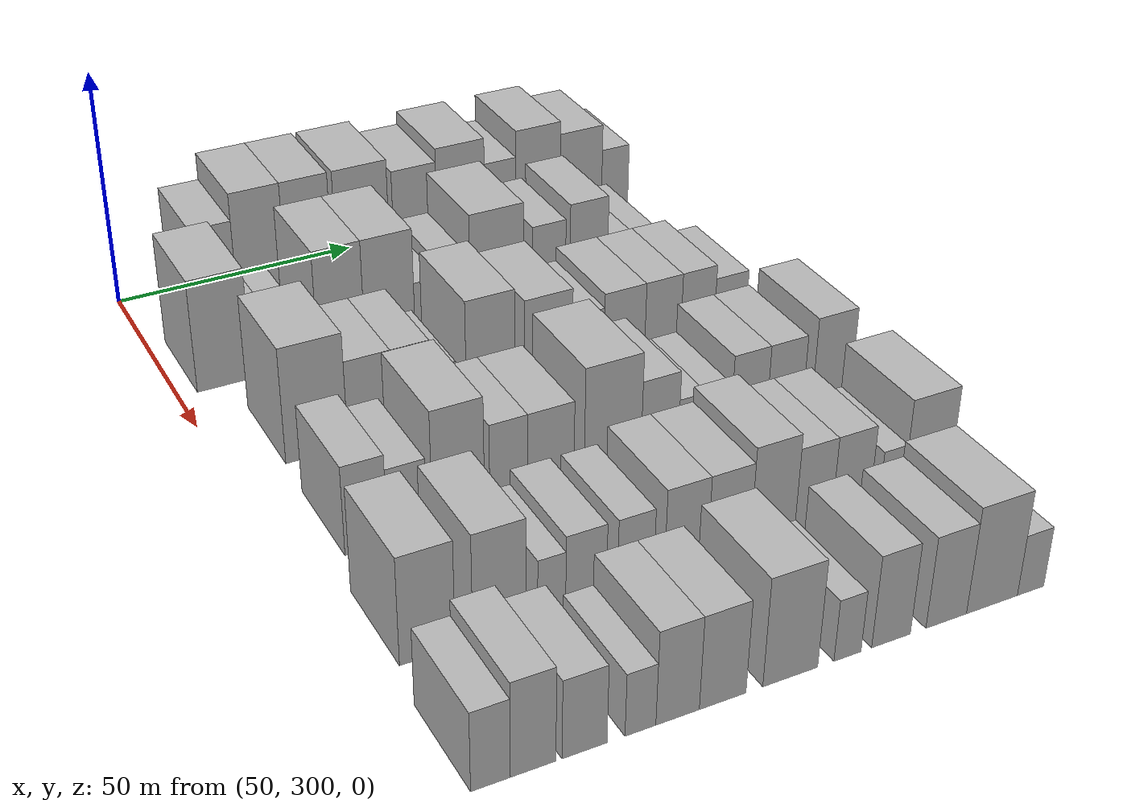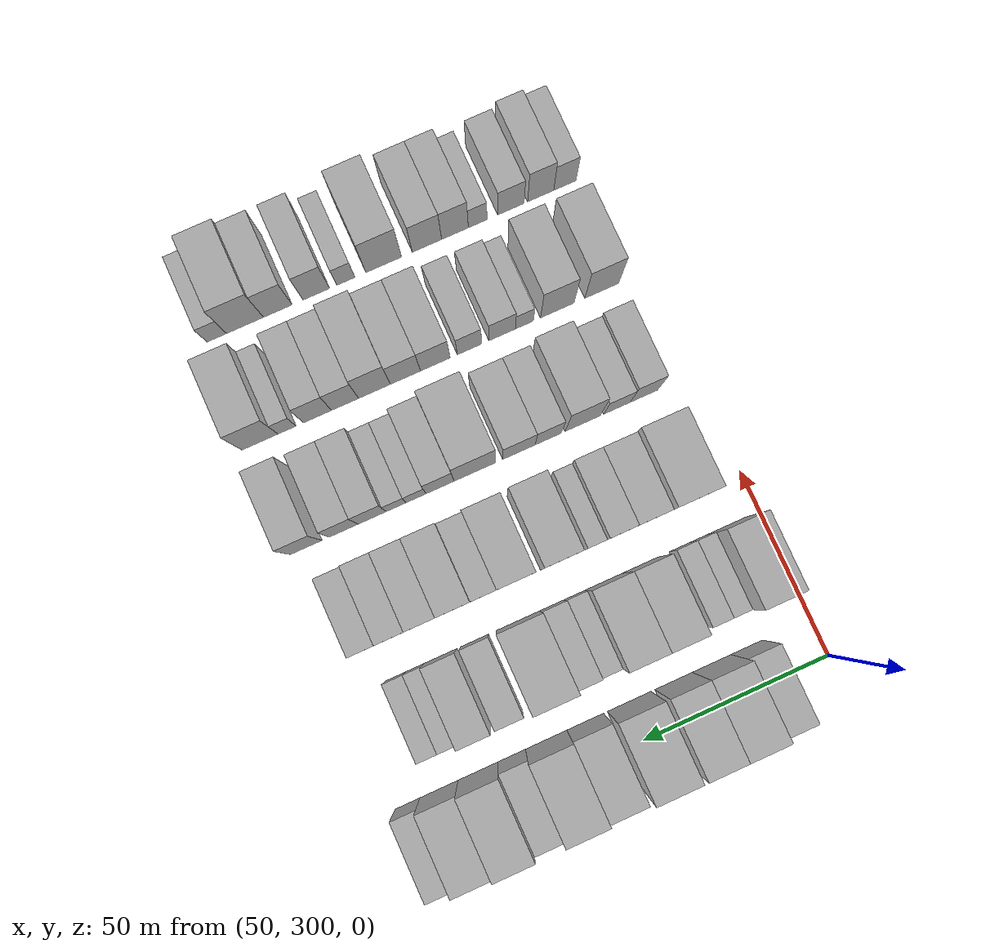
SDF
<sdf version="1.6">
 <world name="default">
  <model name="building_91">
   <static>1</static>
   <pose>50.0000 317.3998 0 0.000000 0.000000 0.000000</pose>
   <link name="link">
    <pose>0 0 9.00 0 0 0</pose>
    <collision name="collision"><geometry><box><size>20.0000 8.5527 18.0000</size></box></geometry></collision>
    <visual name="visual">
     <cast_shadows>0</cast_shadows>
     <geometry><box><size>20.0000 8.5527 18.0000</size></box></geometry>
     <material>
      <script>
       <uri>model://HANNAS_wall/materials/scripts</uri>
       <uri>model://HANNAS_wall/materials/textures</uri>
       <name>vrc/HANNAS_wall</name>
      </script>
     </material>
    </visual>
   </link>
  </model>
  <model name="building_92">
   <static>1</static>
   <pose>50.0000 326.9361 0 0.000000 0.000000 0.000000</pose>
   <link name="link">
    <pose>0 0 12.00 0 0 0</pose>
    <collision name="collision"><geometry><box><size>20.0000 10.5198 24.0000</size></box></geometry></collision>
    <visual name="visual">
     <cast_shadows>0</cast_shadows>
     <geometry><box><size>20.0000 10.5198 24.0000</size></box></geometry>
     <material>
      <script>
       <uri>model://HANNAS_wall/materials/scripts</uri>
       <uri>model://HANNAS_wall/materials/textures</uri>
       <name>vrc/HANNAS_wall</name>
      </script>
     </material>
    </visual>
   </link>
  </model>
  <model name="building_93">
   <static>1</static>
   <pose>50.0000 337.2827 0 0.000000 0.000000 0.000000</pose>
   <link name="link">
    <pose>0 0 12.00 0 0 0</pose>
    <collision name="collision"><geometry><box><size>20.0000 10.1734 24.0000</size></box></geometry></collision>
    <visual name="visual">
     <cast_shadows>0</cast_shadows>
     <geometry><box><size>20.0000 10.1734 24.0000</size></box></geometry>
     <material>
      <script>
       <uri>model://HANNAS_wall/materials/scripts</uri>
       <uri>model://HANNAS_wall/materials/textures</uri>
       <name>vrc/HANNAS_wall</name>
      </script>
     </material>
    </visual>
   </link>
  </model>
  <model name="building_94">
   <static>1</static>
   <pose>50.0000 349.2699 0 0.000000 0.000000 0.000000</pose>
   <link name="link">
    <pose>0 0 12.00 0 0 0</pose>
    <collision name="collision"><geometry><box><size>20.0000 11.8011 24.0000</size></box></geometry></collision>
    <visual name="visual">
     <cast_shadows>0</cast_shadows>
     <geometry><box><size>20.0000 11.8011 24.0000</size></box></geometry>
     <material>
      <script>
       <uri>model://HANNAS_wall/materials/scripts</uri>
       <uri>model://HANNAS_wall/materials/textures</uri>
       <name>vrc/HANNAS_wall</name>
      </script>
     </material>
    </visual>
   </link>
  </model>
  <model name="building_95">
   <static>1</static>
   <pose>50.0000 361.1026 0 0.000000 0.000000 0.000000</pose>
   <link name="link">
    <pose>0 0 10.50 0 0 0</pose>
    <collision name="collision"><geometry><box><size>20.0000 9.8641 21.0000</size></box></geometry></collision>
    <visual name="visual">
     <cast_shadows>0</cast_shadows>
     <geometry><box><size>20.0000 9.8641 21.0000</size></box></geometry>
     <material>
      <script>
       <uri>model://HANNAS_wall/materials/scripts</uri>
       <uri>model://HANNAS_wall/materials/textures</uri>
       <name>vrc/HANNAS_wall</name>
      </script>
     </material>
    </visual>
   </link>
  </model>
  <model name="building_96">
   <static>1</static>
   <pose>50.0000 371.5688 0 0.000000 0.000000 0.000000</pose>
   <link name="link">
    <pose>0 0 12.00 0 0 0</pose>
    <collision name="collision"><geometry><box><size>20.0000 11.0684 24.0000</size></box></geometry></collision>
    <visual name="visual">
     <cast_shadows>0</cast_shadows>
     <geometry><box><size>20.0000 11.0684 24.0000</size></box></geometry>
     <material>
      <script>
       <uri>model://HANNAS_wall/materials/scripts</uri>
       <uri>model://HANNAS_wall/materials/textures</uri>
       <name>vrc/HANNAS_wall</name>
      </script>
     </material>
    </visual>
   </link>
  </model>
  <model name="building_97">
   <static>1</static>
   <pose>50.0000 380.7901 0 0.000000 0.000000 0.000000</pose>
   <link name="link">
    <pose>0 0 9.00 0 0 0</pose>
    <collision name="collision"><geometry><box><size>20.0000 7.3742 18.0000</size></box></geometry></collision>
    <visual name="visual">
     <cast_shadows>0</cast_shadows>
     <geometry><box><size>20.0000 7.3742 18.0000</size></box></geometry>
     <material>
      <script>
       <uri>model://HANNAS_wall/materials/scripts</uri>
       <uri>model://HANNAS_wall/materials/textures</uri>
       <name>vrc/HANNAS_wall</name>
      </script>
     </material>
    </visual>
   </link>
  </model>
  <model name="building_98">
   <static>1</static>
   <pose>50.0000 389.7517 0 0.000000 0.000000 0.000000</pose>
   <link name="link">
    <pose>0 0 12.00 0 0 0</pose>
    <collision name="collision"><geometry><box><size>20.0000 10.5489 24.0000</size></box></geometry></collision>
    <visual name="visual">
     <cast_shadows>0</cast_shadows>
     <geometry><box><size>20.0000 10.5489 24.0000</size></box></geometry>
     <material>
      <script>
       <uri>model://HANNAS_wall/materials/scripts</uri>
       <uri>model://HANNAS_wall/materials/textures</uri>
       <name>vrc/HANNAS_wall</name>
      </script>
     </material>
    </visual>
   </link>
  </model>
  <model name="building_99">
   <static>1</static>
   <pose>50.0000 400.0946 0 0.000000 0.000000 0.000000</pose>
   <link name="link">
    <pose>0 0 10.50 0 0 0</pose>
    <collision name="collision"><geometry><box><size>20.0000 10.1369 21.0000</size></box></geometry></collision>
    <visual name="visual">
     <cast_shadows>0</cast_shadows>
     <geometry><box><size>20.0000 10.1369 21.0000</size></box></geometry>
     <material>
      <script>
       <uri>model://HANNAS_wall/materials/scripts</uri>
       <uri>model://HANNAS_wall/materials/textures</uri>
       <name>vrc/HANNAS_wall</name>
      </script>
     </material>
    </visual>
   </link>
  </model>
  <model name="building_100">
   <static>1</static>
   <pose>50.0000 408.4474 0 0.000000 0.000000 0.000000</pose>
   <link name="link">
    <pose>0 0 7.50 0 0 0</pose>
    <collision name="collision"><geometry><box><size>20.0000 6.5687 15.0000</size></box></geometry></collision>
    <visual name="visual">
     <cast_shadows>0</cast_shadows>
     <geometry><box><size>20.0000 6.5687 15.0000</size></box></geometry>
     <material>
      <script>
       <uri>model://HANNAS_wall/materials/scripts</uri>
       <uri>model://HANNAS_wall/materials/textures</uri>
       <name>vrc/HANNAS_wall</name>
      </script>
     </material>
    </visual>
   </link>
  </model>
  <model name="building_209">
   <static>1</static>
   <pose>79.0000 309.1267 0 0.000000 0.000000 0.000000</pose>
   <link name="link">
    <pose>0 0 12.00 0 0 0</pose>
    <collision name="collision"><geometry><box><size>20.0000 10.8365 24.0000</size></box></geometry></collision>
    <visual name="visual">
     <cast_shadows>0</cast_shadows>
     <geometry><box><size>20.0000 10.8365 24.0000</size></box></geometry>
     <material>
      <script>
       <uri>model://HANNAS_wall/materials/scripts</uri>
       <uri>model://HANNAS_wall/materials/textures</uri>
       <name>vrc/HANNAS_wall</name>
      </script>
     </material>
    </visual>
   </link>
  </model>
  <model name="building_210">
   <static>1</static>
   <pose>79.0000 316.9515 0 0.000000 0.000000 0.000000</pose>
   <link name="link">
    <pose>0 0 6.00 0 0 0</pose>
    <collision name="collision"><geometry><box><size>20.0000 4.8131 12.0000</size></box></geometry></collision>
    <visual name="visual">
     <cast_shadows>0</cast_shadows>
     <geometry><box><size>20.0000 4.8131 12.0000</size></box></geometry>
     <material>
      <script>
       <uri>model://HANNAS_wall/materials/scripts</uri>
       <uri>model://HANNAS_wall/materials/textures</uri>
       <name>vrc/HANNAS_wall</name>
      </script>
     </material>
    </visual>
   </link>
  </model>
  <model name="building_211">
   <static>1</static>
   <pose>79.0000 322.1248 0 0.000000 0.000000 0.000000</pose>
   <link name="link">
    <pose>0 0 6.00 0 0 0</pose>
    <collision name="collision"><geometry><box><size>20.0000 5.5335 12.0000</size></box></geometry></collision>
    <visual name="visual">
     <cast_shadows>0</cast_shadows>
     <geometry><box><size>20.0000 5.5335 12.0000</size></box></geometry>
     <material>
      <script>
       <uri>model://HANNAS_wall/materials/scripts</uri>
       <uri>model://HANNAS_wall/materials/textures</uri>
       <name>vrc/HANNAS_wall</name>
      </script>
     </material>
    </visual>
   </link>
  </model>
  <model name="building_212">
   <static>1</static>
   <pose>79.0000 332.7731 0 0.000000 0.000000 0.000000</pose>
   <link name="link">
    <pose>0 0 12.00 0 0 0</pose>
    <collision name="collision"><geometry><box><size>20.0000 9.7631 24.0000</size></box></geometry></collision>
    <visual name="visual">
     <cast_shadows>0</cast_shadows>
     <geometry><box><size>20.0000 9.7631 24.0000</size></box></geometry>
     <material>
      <script>
       <uri>model://HANNAS_wall/materials/scripts</uri>
       <uri>model://HANNAS_wall/materials/textures</uri>
       <name>vrc/HANNAS_wall</name>
      </script>
     </material>
    </visual>
   </link>
  </model>
  <model name="building_213">
   <static>1</static>
   <pose>79.0000 342.9310 0 0.000000 0.000000 0.000000</pose>
   <link name="link">
    <pose>0 0 12.00 0 0 0</pose>
    <collision name="collision"><geometry><box><size>20.0000 10.5527 24.0000</size></box></geometry></collision>
    <visual name="visual">
     <cast_shadows>0</cast_shadows>
     <geometry><box><size>20.0000 10.5527 24.0000</size></box></geometry>
     <material>
      <script>
       <uri>model://HANNAS_wall/materials/scripts</uri>
       <uri>model://HANNAS_wall/materials/textures</uri>
       <name>vrc/HANNAS_wall</name>
      </script>
     </material>
    </visual>
   </link>
  </model>
  <model name="building_214">
   <static>1</static>
   <pose>79.0000 350.9197 0 0.000000 0.000000 0.000000</pose>
   <link name="link">
    <pose>0 0 6.00 0 0 0</pose>
    <collision name="collision"><geometry><box><size>20.0000 5.4247 12.0000</size></box></geometry></collision>
    <visual name="visual">
     <cast_shadows>0</cast_shadows>
     <geometry><box><size>20.0000 5.4247 12.0000</size></box></geometry>
     <material>
      <script>
       <uri>model://HANNAS_wall/materials/scripts</uri>
       <uri>model://HANNAS_wall/materials/textures</uri>
       <name>vrc/HANNAS_wall</name>
      </script>
     </material>
    </visual>
   </link>
  </model>
  <model name="building_215">
   <static>1</static>
   <pose>79.0000 356.9123 0 0.000000 0.000000 0.000000</pose>
   <link name="link">
    <pose>0 0 7.50 0 0 0</pose>
    <collision name="collision"><geometry><box><size>20.0000 6.5605 15.0000</size></box></geometry></collision>
    <visual name="visual">
     <cast_shadows>0</cast_shadows>
     <geometry><box><size>20.0000 6.5605 15.0000</size></box></geometry>
     <material>
      <script>
       <uri>model://HANNAS_wall/materials/scripts</uri>
       <uri>model://HANNAS_wall/materials/textures</uri>
       <name>vrc/HANNAS_wall</name>
      </script>
     </material>
    </visual>
   </link>
  </model>
  <model name="building_216">
   <static>1</static>
   <pose>79.0000 366.0514 0 0.000000 0.000000 0.000000</pose>
   <link name="link">
    <pose>0 0 12.00 0 0 0</pose>
    <collision name="collision"><geometry><box><size>20.0000 11.7177 24.0000</size></box></geometry></collision>
    <visual name="visual">
     <cast_shadows>0</cast_shadows>
     <geometry><box><size>20.0000 11.7177 24.0000</size></box></geometry>
     <material>
      <script>
       <uri>model://HANNAS_wall/materials/scripts</uri>
       <uri>model://HANNAS_wall/materials/textures</uri>
       <name>vrc/HANNAS_wall</name>
      </script>
     </material>
    </visual>
   </link>
  </model>
  <model name="building_217">
   <static>1</static>
   <pose>79.0000 377.6066 0 0.000000 0.000000 0.000000</pose>
   <link name="link">
    <pose>0 0 9.00 0 0 0</pose>
    <collision name="collision"><geometry><box><size>20.0000 7.3928 18.0000</size></box></geometry></collision>
    <visual name="visual">
     <cast_shadows>0</cast_shadows>
     <geometry><box><size>20.0000 7.3928 18.0000</size></box></geometry>
     <material>
      <script>
       <uri>model://HANNAS_wall/materials/scripts</uri>
       <uri>model://HANNAS_wall/materials/textures</uri>
       <name>vrc/HANNAS_wall</name>
      </script>
     </material>
    </visual>
   </link>
  </model>
  <model name="building_218">
   <static>1</static>
   <pose>79.0000 386.5895 0 0.000000 0.000000 0.000000</pose>
   <link name="link">
    <pose>0 0 10.50 0 0 0</pose>
    <collision name="collision"><geometry><box><size>20.0000 8.5730 21.0000</size></box></geometry></collision>
    <visual name="visual">
     <cast_shadows>0</cast_shadows>
     <geometry><box><size>20.0000 8.5730 21.0000</size></box></geometry>
     <material>
      <script>
       <uri>model://HANNAS_wall/materials/scripts</uri>
       <uri>model://HANNAS_wall/materials/textures</uri>
       <name>vrc/HANNAS_wall</name>
      </script>
     </material>
    </visual>
   </link>
  </model>
  <model name="building_219">
   <static>1</static>
   <pose>79.0000 393.4335 0 0.000000 0.000000 0.000000</pose>
   <link name="link">
    <pose>0 0 6.00 0 0 0</pose>
    <collision name="collision"><geometry><box><size>20.0000 5.1151 12.0000</size></box></geometry></collision>
    <visual name="visual">
     <cast_shadows>0</cast_shadows>
     <geometry><box><size>20.0000 5.1151 12.0000</size></box></geometry>
     <material>
      <script>
       <uri>model://HANNAS_wall/materials/scripts</uri>
       <uri>model://HANNAS_wall/materials/textures</uri>
       <name>vrc/HANNAS_wall</name>
      </script>
     </material>
    </visual>
   </link>
  </model>
  <model name="building_220">
   <static>1</static>
   <pose>79.0000 398.6541 0 0.000000 0.000000 0.000000</pose>
   <link name="link">
    <pose>0 0 6.00 0 0 0</pose>
    <collision name="collision"><geometry><box><size>20.0000 5.3261 12.0000</size></box></geometry></collision>
    <visual name="visual">
     <cast_shadows>0</cast_shadows>
     <geometry><box><size>20.0000 5.3261 12.0000</size></box></geometry>
     <material>
      <script>
       <uri>model://HANNAS_wall/materials/scripts</uri>
       <uri>model://HANNAS_wall/materials/textures</uri>
       <name>vrc/HANNAS_wall</name>
      </script>
     </material>
    </visual>
   </link>
  </model>
  <model name="building_317">
   <static>1</static>
   <pose>108.0000 316.4396 0 0.000000 0.000000 0.000000</pose>
   <link name="link">
    <pose>0 0 12.00 0 0 0</pose>
    <collision name="collision"><geometry><box><size>20.0000 11.8699 24.0000</size></box></geometry></collision>
    <visual name="visual">
     <cast_shadows>0</cast_shadows>
     <geometry><box><size>20.0000 11.8699 24.0000</size></box></geometry>
     <material>
      <script>
       <uri>model://HANNAS_wall/materials/scripts</uri>
       <uri>model://HANNAS_wall/materials/textures</uri>
       <name>vrc/HANNAS_wall</name>
      </script>
     </material>
    </visual>
   </link>
  </model>
  <model name="building_318">
   <static>1</static>
   <pose>108.0000 326.8194 0 0.000000 0.000000 0.000000</pose>
   <link name="link">
    <pose>0 0 9.00 0 0 0</pose>
    <collision name="collision"><geometry><box><size>20.0000 8.8897 18.0000</size></box></geometry></collision>
    <visual name="visual">
     <cast_shadows>0</cast_shadows>
     <geometry><box><size>20.0000 8.8897 18.0000</size></box></geometry>
     <material>
      <script>
       <uri>model://HANNAS_wall/materials/scripts</uri>
       <uri>model://HANNAS_wall/materials/textures</uri>
       <name>vrc/HANNAS_wall</name>
      </script>
     </material>
    </visual>
   </link>
  </model>
  <model name="building_319">
   <static>1</static>
   <pose>108.0000 335.0189 0 0.000000 0.000000 0.000000</pose>
   <link name="link">
    <pose>0 0 9.00 0 0 0</pose>
    <collision name="collision"><geometry><box><size>20.0000 7.5093 18.0000</size></box></geometry></collision>
    <visual name="visual">
     <cast_shadows>0</cast_shadows>
     <geometry><box><size>20.0000 7.5093 18.0000</size></box></geometry>
     <material>
      <script>
       <uri>model://HANNAS_wall/materials/scripts</uri>
       <uri>model://HANNAS_wall/materials/textures</uri>
       <name>vrc/HANNAS_wall</name>
      </script>
     </material>
    </visual>
   </link>
  </model>
  <model name="building_320">
   <static>1</static>
   <pose>108.0000 341.3200 0 0.000000 0.000000 0.000000</pose>
   <link name="link">
    <pose>0 0 6.00 0 0 0</pose>
    <collision name="collision"><geometry><box><size>20.0000 5.0930 12.0000</size></box></geometry></collision>
    <visual name="visual">
     <cast_shadows>0</cast_shadows>
     <geometry><box><size>20.0000 5.0930 12.0000</size></box></geometry>
     <material>
      <script>
       <uri>model://HANNAS_wall/materials/scripts</uri>
       <uri>model://HANNAS_wall/materials/textures</uri>
       <name>vrc/HANNAS_wall</name>
      </script>
     </material>
    </visual>
   </link>
  </model>
  <model name="building_321">
   <static>1</static>
   <pose>108.0000 350.8098 0 0.000000 0.000000 0.000000</pose>
   <link name="link">
    <pose>0 0 12.00 0 0 0</pose>
    <collision name="collision"><geometry><box><size>20.0000 9.8867 24.0000</size></box></geometry></collision>
    <visual name="visual">
     <cast_shadows>0</cast_shadows>
     <geometry><box><size>20.0000 9.8867 24.0000</size></box></geometry>
     <material>
      <script>
       <uri>model://HANNAS_wall/materials/scripts</uri>
       <uri>model://HANNAS_wall/materials/textures</uri>
       <name>vrc/HANNAS_wall</name>
      </script>
     </material>
    </visual>
   </link>
  </model>
  <model name="building_322">
   <static>1</static>
   <pose>108.0000 362.7203 0 0.000000 0.000000 0.000000</pose>
   <link name="link">
    <pose>0 0 10.50 0 0 0</pose>
    <collision name="collision"><geometry><box><size>20.0000 9.9343 21.0000</size></box></geometry></collision>
    <visual name="visual">
     <cast_shadows>0</cast_shadows>
     <geometry><box><size>20.0000 9.9343 21.0000</size></box></geometry>
     <material>
      <script>
       <uri>model://HANNAS_wall/materials/scripts</uri>
       <uri>model://HANNAS_wall/materials/textures</uri>
       <name>vrc/HANNAS_wall</name>
      </script>
     </material>
    </visual>
   </link>
  </model>
  <model name="building_323">
   <static>1</static>
   <pose>108.0000 371.0617 0 0.000000 0.000000 0.000000</pose>
   <link name="link">
    <pose>0 0 7.50 0 0 0</pose>
    <collision name="collision"><geometry><box><size>20.0000 6.7485 15.0000</size></box></geometry></collision>
    <visual name="visual">
     <cast_shadows>0</cast_shadows>
     <geometry><box><size>20.0000 6.7485 15.0000</size></box></geometry>
     <material>
      <script>
       <uri>model://HANNAS_wall/materials/scripts</uri>
       <uri>model://HANNAS_wall/materials/textures</uri>
       <name>vrc/HANNAS_wall</name>
      </script>
     </material>
    </visual>
   </link>
  </model>
  <model name="building_324">
   <static>1</static>
   <pose>108.0000 378.8462 0 0.000000 0.000000 0.000000</pose>
   <link name="link">
    <pose>0 0 9.00 0 0 0</pose>
    <collision name="collision"><geometry><box><size>20.0000 8.8206 18.0000</size></box></geometry></collision>
    <visual name="visual">
     <cast_shadows>0</cast_shadows>
     <geometry><box><size>20.0000 8.8206 18.0000</size></box></geometry>
     <material>
      <script>
       <uri>model://HANNAS_wall/materials/scripts</uri>
       <uri>model://HANNAS_wall/materials/textures</uri>
       <name>vrc/HANNAS_wall</name>
      </script>
     </material>
    </visual>
   </link>
  </model>
  <model name="building_325">
   <static>1</static>
   <pose>108.0000 387.2092 0 0.000000 0.000000 0.000000</pose>
   <link name="link">
    <pose>0 0 9.00 0 0 0</pose>
    <collision name="collision"><geometry><box><size>20.0000 7.9053 18.0000</size></box></geometry></collision>
    <visual name="visual">
     <cast_shadows>0</cast_shadows>
     <geometry><box><size>20.0000 7.9053 18.0000</size></box></geometry>
     <material>
      <script>
       <uri>model://HANNAS_wall/materials/scripts</uri>
       <uri>model://HANNAS_wall/materials/textures</uri>
       <name>vrc/HANNAS_wall</name>
      </script>
     </material>
    </visual>
   </link>
  </model>
  <model name="building_326">
   <static>1</static>
   <pose>108.0000 394.9001 0 0.000000 0.000000 0.000000</pose>
   <link name="link">
    <pose>0 0 9.00 0 0 0</pose>
    <collision name="collision"><geometry><box><size>20.0000 7.4767 18.0000</size></box></geometry></collision>
    <visual name="visual">
     <cast_shadows>0</cast_shadows>
     <geometry><box><size>20.0000 7.4767 18.0000</size></box></geometry>
     <material>
      <script>
       <uri>model://HANNAS_wall/materials/scripts</uri>
       <uri>model://HANNAS_wall/materials/textures</uri>
       <name>vrc/HANNAS_wall</name>
      </script>
     </material>
    </visual>
   </link>
  </model>
  <model name="building_327">
   <static>1</static>
   <pose>108.0000 402.2523 0 0.000000 0.000000 0.000000</pose>
   <link name="link">
    <pose>0 0 7.50 0 0 0</pose>
    <collision name="collision"><geometry><box><size>20.0000 7.2276 15.0000</size></box></geometry></collision>
    <visual name="visual">
     <cast_shadows>0</cast_shadows>
     <geometry><box><size>20.0000 7.2276 15.0000</size></box></geometry>
     <material>
      <script>
       <uri>model://HANNAS_wall/materials/scripts</uri>
       <uri>model://HANNAS_wall/materials/textures</uri>
       <name>vrc/HANNAS_wall</name>
      </script>
     </material>
    </visual>
   </link>
  </model>
  <model name="building_436">
   <static>1</static>
   <pose>137.0000 313.9712 0 0.000000 0.000000 0.000000</pose>
   <link name="link">
    <pose>0 0 9.00 0 0 0</pose>
    <collision name="collision"><geometry><box><size>20.0000 7.6646 18.0000</size></box></geometry></collision>
    <visual name="visual">
     <cast_shadows>0</cast_shadows>
     <geometry><box><size>20.0000 7.6646 18.0000</size></box></geometry>
     <material>
      <script>
       <uri>model://HANNAS_wall/materials/scripts</uri>
       <uri>model://HANNAS_wall/materials/textures</uri>
       <name>vrc/HANNAS_wall</name>
      </script>
     </material>
    </visual>
   </link>
  </model>
  <model name="building_437">
   <static>1</static>
   <pose>137.0000 321.4317 0 0.000000 0.000000 0.000000</pose>
   <link name="link">
    <pose>0 0 7.50 0 0 0</pose>
    <collision name="collision"><geometry><box><size>20.0000 7.2563 15.0000</size></box></geometry></collision>
    <visual name="visual">
     <cast_shadows>0</cast_shadows>
     <geometry><box><size>20.0000 7.2563 15.0000</size></box></geometry>
     <material>
      <script>
       <uri>model://HANNAS_wall/materials/scripts</uri>
       <uri>model://HANNAS_wall/materials/textures</uri>
       <name>vrc/HANNAS_wall</name>
      </script>
     </material>
    </visual>
   </link>
  </model>
  <model name="building_438">
   <static>1</static>
   <pose>137.0000 330.9157 0 0.000000 0.000000 0.000000</pose>
   <link name="link">
    <pose>0 0 12.00 0 0 0</pose>
    <collision name="collision"><geometry><box><size>20.0000 9.7116 24.0000</size></box></geometry></collision>
    <visual name="visual">
     <cast_shadows>0</cast_shadows>
     <geometry><box><size>20.0000 9.7116 24.0000</size></box></geometry>
     <material>
      <script>
       <uri>model://HANNAS_wall/materials/scripts</uri>
       <uri>model://HANNAS_wall/materials/textures</uri>
       <name>vrc/HANNAS_wall</name>
      </script>
     </material>
    </visual>
   </link>
  </model>
  <model name="building_439">
   <static>1</static>
   <pose>137.0000 340.3897 0 0.000000 0.000000 0.000000</pose>
   <link name="link">
    <pose>0 0 9.00 0 0 0</pose>
    <collision name="collision"><geometry><box><size>20.0000 7.2365 18.0000</size></box></geometry></collision>
    <visual name="visual">
     <cast_shadows>0</cast_shadows>
     <geometry><box><size>20.0000 7.2365 18.0000</size></box></geometry>
     <material>
      <script>
       <uri>model://HANNAS_wall/materials/scripts</uri>
       <uri>model://HANNAS_wall/materials/textures</uri>
       <name>vrc/HANNAS_wall</name>
      </script>
     </material>
    </visual>
   </link>
  </model>
  <model name="building_440">
   <static>1</static>
   <pose>137.0000 348.4582 0 0.000000 0.000000 0.000000</pose>
   <link name="link">
    <pose>0 0 9.00 0 0 0</pose>
    <collision name="collision"><geometry><box><size>20.0000 8.9005 18.0000</size></box></geometry></collision>
    <visual name="visual">
     <cast_shadows>0</cast_shadows>
     <geometry><box><size>20.0000 8.9005 18.0000</size></box></geometry>
     <material>
      <script>
       <uri>model://HANNAS_wall/materials/scripts</uri>
       <uri>model://HANNAS_wall/materials/textures</uri>
       <name>vrc/HANNAS_wall</name>
      </script>
     </material>
    </visual>
   </link>
  </model>
  <model name="building_441">
   <static>1</static>
   <pose>137.0000 360.5502 0 0.000000 0.000000 0.000000</pose>
   <link name="link">
    <pose>0 0 12.00 0 0 0</pose>
    <collision name="collision"><geometry><box><size>20.0000 11.2835 24.0000</size></box></geometry></collision>
    <visual name="visual">
     <cast_shadows>0</cast_shadows>
     <geometry><box><size>20.0000 11.2835 24.0000</size></box></geometry>
     <material>
      <script>
       <uri>model://HANNAS_wall/materials/scripts</uri>
       <uri>model://HANNAS_wall/materials/textures</uri>
       <name>vrc/HANNAS_wall</name>
      </script>
     </material>
    </visual>
   </link>
  </model>
  <model name="building_442">
   <static>1</static>
   <pose>137.0000 369.9878 0 0.000000 0.000000 0.000000</pose>
   <link name="link">
    <pose>0 0 9.00 0 0 0</pose>
    <collision name="collision"><geometry><box><size>20.0000 7.5917 18.0000</size></box></geometry></collision>
    <visual name="visual">
     <cast_shadows>0</cast_shadows>
     <geometry><box><size>20.0000 7.5917 18.0000</size></box></geometry>
     <material>
      <script>
       <uri>model://HANNAS_wall/materials/scripts</uri>
       <uri>model://HANNAS_wall/materials/textures</uri>
       <name>vrc/HANNAS_wall</name>
      </script>
     </material>
    </visual>
   </link>
  </model>
  <model name="building_443">
   <static>1</static>
   <pose>137.0000 376.5083 0 0.000000 0.000000 0.000000</pose>
   <link name="link">
    <pose>0 0 6.00 0 0 0</pose>
    <collision name="collision"><geometry><box><size>20.0000 5.4493 12.0000</size></box></geometry></collision>
    <visual name="visual">
     <cast_shadows>0</cast_shadows>
     <geometry><box><size>20.0000 5.4493 12.0000</size></box></geometry>
     <material>
      <script>
       <uri>model://HANNAS_wall/materials/scripts</uri>
       <uri>model://HANNAS_wall/materials/textures</uri>
       <name>vrc/HANNAS_wall</name>
      </script>
     </material>
    </visual>
   </link>
  </model>
  <model name="building_444">
   <static>1</static>
   <pose>137.0000 381.9366 0 0.000000 0.000000 0.000000</pose>
   <link name="link">
    <pose>0 0 6.00 0 0 0</pose>
    <collision name="collision"><geometry><box><size>20.0000 5.4072 12.0000</size></box></geometry></collision>
    <visual name="visual">
     <cast_shadows>0</cast_shadows>
     <geometry><box><size>20.0000 5.4072 12.0000</size></box></geometry>
     <material>
      <script>
       <uri>model://HANNAS_wall/materials/scripts</uri>
       <uri>model://HANNAS_wall/materials/textures</uri>
       <name>vrc/HANNAS_wall</name>
      </script>
     </material>
    </visual>
   </link>
  </model>
  <model name="building_445">
   <static>1</static>
   <pose>137.0000 388.4516 0 0.000000 0.000000 0.000000</pose>
   <link name="link">
    <pose>0 0 9.00 0 0 0</pose>
    <collision name="collision"><geometry><box><size>20.0000 7.6229 18.0000</size></box></geometry></collision>
    <visual name="visual">
     <cast_shadows>0</cast_shadows>
     <geometry><box><size>20.0000 7.6229 18.0000</size></box></geometry>
     <material>
      <script>
       <uri>model://HANNAS_wall/materials/scripts</uri>
       <uri>model://HANNAS_wall/materials/textures</uri>
       <name>vrc/HANNAS_wall</name>
      </script>
     </material>
    </visual>
   </link>
  </model>
  <model name="building_446">
   <static>1</static>
   <pose>137.0000 396.1461 0 0.000000 0.000000 0.000000</pose>
   <link name="link">
    <pose>0 0 9.00 0 0 0</pose>
    <collision name="collision"><geometry><box><size>20.0000 7.7661 18.0000</size></box></geometry></collision>
    <visual name="visual">
     <cast_shadows>0</cast_shadows>
     <geometry><box><size>20.0000 7.7661 18.0000</size></box></geometry>
     <material>
      <script>
       <uri>model://HANNAS_wall/materials/scripts</uri>
       <uri>model://HANNAS_wall/materials/textures</uri>
       <name>vrc/HANNAS_wall</name>
      </script>
     </material>
    </visual>
   </link>
  </model>
  <model name="building_447">
   <static>1</static>
   <pose>137.0000 406.2777 0 0.000000 0.000000 0.000000</pose>
   <link name="link">
    <pose>0 0 10.50 0 0 0</pose>
    <collision name="collision"><geometry><box><size>20.0000 8.4971 21.0000</size></box></geometry></collision>
    <visual name="visual">
     <cast_shadows>0</cast_shadows>
     <geometry><box><size>20.0000 8.4971 21.0000</size></box></geometry>
     <material>
      <script>
       <uri>model://HANNAS_wall/materials/scripts</uri>
       <uri>model://HANNAS_wall/materials/textures</uri>
       <name>vrc/HANNAS_wall</name>
      </script>
     </material>
    </visual>
   </link>
  </model>
  <model name="building_552">
   <static>1</static>
   <pose>166.0000 312.2296 0 0.000000 0.000000 0.000000</pose>
   <link name="link">
    <pose>0 0 10.50 0 0 0</pose>
    <collision name="collision"><geometry><box><size>20.0000 9.4520 21.0000</size></box></geometry></collision>
    <visual name="visual">
     <cast_shadows>0</cast_shadows>
     <geometry><box><size>20.0000 9.4520 21.0000</size></box></geometry>
     <material>
      <script>
       <uri>model://HANNAS_wall/materials/scripts</uri>
       <uri>model://HANNAS_wall/materials/textures</uri>
       <name>vrc/HANNAS_wall</name>
      </script>
     </material>
    </visual>
   </link>
  </model>
  <model name="building_553">
   <static>1</static>
   <pose>166.0000 324.6256 0 0.000000 0.000000 0.000000</pose>
   <link name="link">
    <pose>0 0 10.50 0 0 0</pose>
    <collision name="collision"><geometry><box><size>20.0000 9.3401 21.0000</size></box></geometry></collision>
    <visual name="visual">
     <cast_shadows>0</cast_shadows>
     <geometry><box><size>20.0000 9.3401 21.0000</size></box></geometry>
     <material>
      <script>
       <uri>model://HANNAS_wall/materials/scripts</uri>
       <uri>model://HANNAS_wall/materials/textures</uri>
       <name>vrc/HANNAS_wall</name>
      </script>
     </material>
    </visual>
   </link>
  </model>
  <model name="building_554">
   <static>1</static>
   <pose>166.0000 333.7858 0 0.000000 0.000000 0.000000</pose>
   <link name="link">
    <pose>0 0 6.00 0 0 0</pose>
    <collision name="collision"><geometry><box><size>20.0000 4.9802 12.0000</size></box></geometry></collision>
    <visual name="visual">
     <cast_shadows>0</cast_shadows>
     <geometry><box><size>20.0000 4.9802 12.0000</size></box></geometry>
     <material>
      <script>
       <uri>model://HANNAS_wall/materials/scripts</uri>
       <uri>model://HANNAS_wall/materials/textures</uri>
       <name>vrc/HANNAS_wall</name>
      </script>
     </material>
    </visual>
   </link>
  </model>
  <model name="building_555">
   <static>1</static>
   <pose>166.0000 339.9478 0 0.000000 0.000000 0.000000</pose>
   <link name="link">
    <pose>0 0 7.50 0 0 0</pose>
    <collision name="collision"><geometry><box><size>20.0000 7.3438 15.0000</size></box></geometry></collision>
    <visual name="visual">
     <cast_shadows>0</cast_shadows>
     <geometry><box><size>20.0000 7.3438 15.0000</size></box></geometry>
     <material>
      <script>
       <uri>model://HANNAS_wall/materials/scripts</uri>
       <uri>model://HANNAS_wall/materials/textures</uri>
       <name>vrc/HANNAS_wall</name>
      </script>
     </material>
    </visual>
   </link>
  </model>
  <model name="building_556">
   <static>1</static>
   <pose>166.0000 348.9796 0 0.000000 0.000000 0.000000</pose>
   <link name="link">
    <pose>0 0 7.50 0 0 0</pose>
    <collision name="collision"><geometry><box><size>20.0000 6.7199 15.0000</size></box></geometry></collision>
    <visual name="visual">
     <cast_shadows>0</cast_shadows>
     <geometry><box><size>20.0000 6.7199 15.0000</size></box></geometry>
     <material>
      <script>
       <uri>model://HANNAS_wall/materials/scripts</uri>
       <uri>model://HANNAS_wall/materials/textures</uri>
       <name>vrc/HANNAS_wall</name>
      </script>
     </material>
    </visual>
   </link>
  </model>
  <model name="building_557">
   <static>1</static>
   <pose>166.0000 358.4226 0 0.000000 0.000000 0.000000</pose>
   <link name="link">
    <pose>0 0 9.00 0 0 0</pose>
    <collision name="collision"><geometry><box><size>20.0000 8.1661 18.0000</size></box></geometry></collision>
    <visual name="visual">
     <cast_shadows>0</cast_shadows>
     <geometry><box><size>20.0000 8.1661 18.0000</size></box></geometry>
     <material>
      <script>
       <uri>model://HANNAS_wall/materials/scripts</uri>
       <uri>model://HANNAS_wall/materials/textures</uri>
       <name>vrc/HANNAS_wall</name>
      </script>
     </material>
    </visual>
   </link>
  </model>
  <model name="building_558">
   <static>1</static>
   <pose>166.0000 366.6327 0 0.000000 0.000000 0.000000</pose>
   <link name="link">
    <pose>0 0 9.00 0 0 0</pose>
    <collision name="collision"><geometry><box><size>20.0000 8.2541 18.0000</size></box></geometry></collision>
    <visual name="visual">
     <cast_shadows>0</cast_shadows>
     <geometry><box><size>20.0000 8.2541 18.0000</size></box></geometry>
     <material>
      <script>
       <uri>model://HANNAS_wall/materials/scripts</uri>
       <uri>model://HANNAS_wall/materials/textures</uri>
       <name>vrc/HANNAS_wall</name>
      </script>
     </material>
    </visual>
   </link>
  </model>
  <model name="building_559">
   <static>1</static>
   <pose>166.0000 375.1229 0 0.000000 0.000000 0.000000</pose>
   <link name="link">
    <pose>0 0 10.50 0 0 0</pose>
    <collision name="collision"><geometry><box><size>20.0000 8.7263 21.0000</size></box></geometry></collision>
    <visual name="visual">
     <cast_shadows>0</cast_shadows>
     <geometry><box><size>20.0000 8.7263 21.0000</size></box></geometry>
     <material>
      <script>
       <uri>model://HANNAS_wall/materials/scripts</uri>
       <uri>model://HANNAS_wall/materials/textures</uri>
       <name>vrc/HANNAS_wall</name>
      </script>
     </material>
    </visual>
   </link>
  </model>
  <model name="building_560">
   <static>1</static>
   <pose>166.0000 383.1969 0 0.000000 0.000000 0.000000</pose>
   <link name="link">
    <pose>0 0 9.00 0 0 0</pose>
    <collision name="collision"><geometry><box><size>20.0000 7.4217 18.0000</size></box></geometry></collision>
    <visual name="visual">
     <cast_shadows>0</cast_shadows>
     <geometry><box><size>20.0000 7.4217 18.0000</size></box></geometry>
     <material>
      <script>
       <uri>model://HANNAS_wall/materials/scripts</uri>
       <uri>model://HANNAS_wall/materials/textures</uri>
       <name>vrc/HANNAS_wall</name>
      </script>
     </material>
    </visual>
   </link>
  </model>
  <model name="building_561">
   <static>1</static>
   <pose>166.0000 390.7473 0 0.000000 0.000000 0.000000</pose>
   <link name="link">
    <pose>0 0 9.00 0 0 0</pose>
    <collision name="collision"><geometry><box><size>20.0000 7.6792 18.0000</size></box></geometry></collision>
    <visual name="visual">
     <cast_shadows>0</cast_shadows>
     <geometry><box><size>20.0000 7.6792 18.0000</size></box></geometry>
     <material>
      <script>
       <uri>model://HANNAS_wall/materials/scripts</uri>
       <uri>model://HANNAS_wall/materials/textures</uri>
       <name>vrc/HANNAS_wall</name>
      </script>
     </material>
    </visual>
   </link>
  </model>
  <model name="building_562">
   <static>1</static>
   <pose>166.0000 399.0446 0 0.000000 0.000000 0.000000</pose>
   <link name="link">
    <pose>0 0 6.00 0 0 0</pose>
    <collision name="collision"><geometry><box><size>20.0000 4.9154 12.0000</size></box></geometry></collision>
    <visual name="visual">
     <cast_shadows>0</cast_shadows>
     <geometry><box><size>20.0000 4.9154 12.0000</size></box></geometry>
     <material>
      <script>
       <uri>model://HANNAS_wall/materials/scripts</uri>
       <uri>model://HANNAS_wall/materials/textures</uri>
       <name>vrc/HANNAS_wall</name>
      </script>
     </material>
    </visual>
   </link>
  </model>
  <model name="building_563">
   <static>1</static>
   <pose>166.0000 406.4138 0 0.000000 0.000000 0.000000</pose>
   <link name="link">
    <pose>0 0 10.50 0 0 0</pose>
    <collision name="collision"><geometry><box><size>20.0000 9.8230 21.0000</size></box></geometry></collision>
    <visual name="visual">
     <cast_shadows>0</cast_shadows>
     <geometry><box><size>20.0000 9.8230 21.0000</size></box></geometry>
     <material>
      <script>
       <uri>model://HANNAS_wall/materials/scripts</uri>
       <uri>model://HANNAS_wall/materials/textures</uri>
       <name>vrc/HANNAS_wall</name>
      </script>
     </material>
    </visual>
   </link>
  </model>
  <model name="building_662">
   <static>1</static>
   <pose>195.0000 309.1910 0 0.000000 0.000000 0.000000</pose>
   <link name="link">
    <pose>0 0 7.50 0 0 0</pose>
    <collision name="collision"><geometry><box><size>20.0000 6.2972 15.0000</size></box></geometry></collision>
    <visual name="visual">
     <cast_shadows>0</cast_shadows>
     <geometry><box><size>20.0000 6.2972 15.0000</size></box></geometry>
     <material>
      <script>
       <uri>model://HANNAS_wall/materials/scripts</uri>
       <uri>model://HANNAS_wall/materials/textures</uri>
       <name>vrc/HANNAS_wall</name>
      </script>
     </material>
    </visual>
   </link>
  </model>
  <model name="building_663">
   <static>1</static>
   <pose>195.0000 316.0054 0 0.000000 0.000000 0.000000</pose>
   <link name="link">
    <pose>0 0 9.00 0 0 0</pose>
    <collision name="collision"><geometry><box><size>20.0000 7.3317 18.0000</size></box></geometry></collision>
    <visual name="visual">
     <cast_shadows>0</cast_shadows>
     <geometry><box><size>20.0000 7.3317 18.0000</size></box></geometry>
     <material>
      <script>
       <uri>model://HANNAS_wall/materials/scripts</uri>
       <uri>model://HANNAS_wall/materials/textures</uri>
       <name>vrc/HANNAS_wall</name>
      </script>
     </material>
    </visual>
   </link>
  </model>
  <model name="building_664">
   <static>1</static>
   <pose>195.0000 324.3784 0 0.000000 0.000000 0.000000</pose>
   <link name="link">
    <pose>0 0 7.50 0 0 0</pose>
    <collision name="collision"><geometry><box><size>20.0000 7.4142 15.0000</size></box></geometry></collision>
    <visual name="visual">
     <cast_shadows>0</cast_shadows>
     <geometry><box><size>20.0000 7.4142 15.0000</size></box></geometry>
     <material>
      <script>
       <uri>model://HANNAS_wall/materials/scripts</uri>
       <uri>model://HANNAS_wall/materials/textures</uri>
       <name>vrc/HANNAS_wall</name>
      </script>
     </material>
    </visual>
   </link>
  </model>
  <model name="building_665">
   <static>1</static>
   <pose>195.0000 333.6907 0 0.000000 0.000000 0.000000</pose>
   <link name="link">
    <pose>0 0 6.00 0 0 0</pose>
    <collision name="collision"><geometry><box><size>20.0000 5.2104 12.0000</size></box></geometry></collision>
    <visual name="visual">
     <cast_shadows>0</cast_shadows>
     <geometry><box><size>20.0000 5.2104 12.0000</size></box></geometry>
     <material>
      <script>
       <uri>model://HANNAS_wall/materials/scripts</uri>
       <uri>model://HANNAS_wall/materials/textures</uri>
       <name>vrc/HANNAS_wall</name>
      </script>
     </material>
    </visual>
   </link>
  </model>
  <model name="building_666">
   <static>1</static>
   <pose>195.0000 340.0334 0 0.000000 0.000000 0.000000</pose>
   <link name="link">
    <pose>0 0 9.00 0 0 0</pose>
    <collision name="collision"><geometry><box><size>20.0000 7.4751 18.0000</size></box></geometry></collision>
    <visual name="visual">
     <cast_shadows>0</cast_shadows>
     <geometry><box><size>20.0000 7.4751 18.0000</size></box></geometry>
     <material>
      <script>
       <uri>model://HANNAS_wall/materials/scripts</uri>
       <uri>model://HANNAS_wall/materials/textures</uri>
       <name>vrc/HANNAS_wall</name>
      </script>
     </material>
    </visual>
   </link>
  </model>
  <model name="building_667">
   <static>1</static>
   <pose>195.0000 347.8601 0 0.000000 0.000000 0.000000</pose>
   <link name="link">
    <pose>0 0 9.00 0 0 0</pose>
    <collision name="collision"><geometry><box><size>20.0000 8.1783 18.0000</size></box></geometry></collision>
    <visual name="visual">
     <cast_shadows>0</cast_shadows>
     <geometry><box><size>20.0000 8.1783 18.0000</size></box></geometry>
     <material>
      <script>
       <uri>model://HANNAS_wall/materials/scripts</uri>
       <uri>model://HANNAS_wall/materials/textures</uri>
       <name>vrc/HANNAS_wall</name>
      </script>
     </material>
    </visual>
   </link>
  </model>
  <model name="building_668">
   <static>1</static>
   <pose>195.0000 359.9137 0 0.000000 0.000000 0.000000</pose>
   <link name="link">
    <pose>0 0 10.50 0 0 0</pose>
    <collision name="collision"><geometry><box><size>20.0000 9.9289 21.0000</size></box></geometry></collision>
    <visual name="visual">
     <cast_shadows>0</cast_shadows>
     <geometry><box><size>20.0000 9.9289 21.0000</size></box></geometry>
     <material>
      <script>
       <uri>model://HANNAS_wall/materials/scripts</uri>
       <uri>model://HANNAS_wall/materials/textures</uri>
       <name>vrc/HANNAS_wall</name>
      </script>
     </material>
    </visual>
   </link>
  </model>
  <model name="building_669">
   <static>1</static>
   <pose>195.0000 370.3883 0 0.000000 0.000000 0.000000</pose>
   <link name="link">
    <pose>0 0 6.00 0 0 0</pose>
    <collision name="collision"><geometry><box><size>20.0000 5.0202 12.0000</size></box></geometry></collision>
    <visual name="visual">
     <cast_shadows>0</cast_shadows>
     <geometry><box><size>20.0000 5.0202 12.0000</size></box></geometry>
     <material>
      <script>
       <uri>model://HANNAS_wall/materials/scripts</uri>
       <uri>model://HANNAS_wall/materials/textures</uri>
       <name>vrc/HANNAS_wall</name>
      </script>
     </material>
    </visual>
   </link>
  </model>
  <model name="building_670">
   <static>1</static>
   <pose>195.0000 378.5712 0 0.000000 0.000000 0.000000</pose>
   <link name="link">
    <pose>0 0 9.00 0 0 0</pose>
    <collision name="collision"><geometry><box><size>20.0000 7.3456 18.0000</size></box></geometry></collision>
    <visual name="visual">
     <cast_shadows>0</cast_shadows>
     <geometry><box><size>20.0000 7.3456 18.0000</size></box></geometry>
     <material>
      <script>
       <uri>model://HANNAS_wall/materials/scripts</uri>
       <uri>model://HANNAS_wall/materials/textures</uri>
       <name>vrc/HANNAS_wall</name>
      </script>
     </material>
    </visual>
   </link>
  </model>
  <model name="building_671">
   <static>1</static>
   <pose>195.0000 389.1953 0 0.000000 0.000000 0.000000</pose>
   <link name="link">
    <pose>0 0 9.00 0 0 0</pose>
    <collision name="collision"><geometry><box><size>20.0000 7.9027 18.0000</size></box></geometry></collision>
    <visual name="visual">
     <cast_shadows>0</cast_shadows>
     <geometry><box><size>20.0000 7.9027 18.0000</size></box></geometry>
     <material>
      <script>
       <uri>model://HANNAS_wall/materials/scripts</uri>
       <uri>model://HANNAS_wall/materials/textures</uri>
       <name>vrc/HANNAS_wall</name>
      </script>
     </material>
    </visual>
   </link>
  </model>
  <model name="building_672">
   <static>1</static>
   <pose>195.0000 398.2203 0 0.000000 0.000000 0.000000</pose>
   <link name="link">
    <pose>0 0 10.50 0 0 0</pose>
    <collision name="collision"><geometry><box><size>20.0000 10.1474 21.0000</size></box></geometry></collision>
    <visual name="visual">
     <cast_shadows>0</cast_shadows>
     <geometry><box><size>20.0000 10.1474 21.0000</size></box></geometry>
     <material>
      <script>
       <uri>model://HANNAS_wall/materials/scripts</uri>
       <uri>model://HANNAS_wall/materials/textures</uri>
       <name>vrc/HANNAS_wall</name>
      </script>
     </material>
    </visual>
   </link>
  </model>
  <model name="building_673">
   <static>1</static>
   <pose>195.0000 405.9563 0 0.000000 0.000000 0.000000</pose>
   <link name="link">
    <pose>0 0 6.00 0 0 0</pose>
    <collision name="collision"><geometry><box><size>20.0000 5.3245 12.0000</size></box></geometry></collision>
    <visual name="visual">
     <cast_shadows>0</cast_shadows>
     <geometry><box><size>20.0000 5.3245 12.0000</size></box></geometry>
     <material>
      <script>
       <uri>model://HANNAS_wall/materials/scripts</uri>
       <uri>model://HANNAS_wall/materials/textures</uri>
       <name>vrc/HANNAS_wall</name>
      </script>
     </material>
    </visual>
   </link>
  </model>
 </world>
</sdf>
